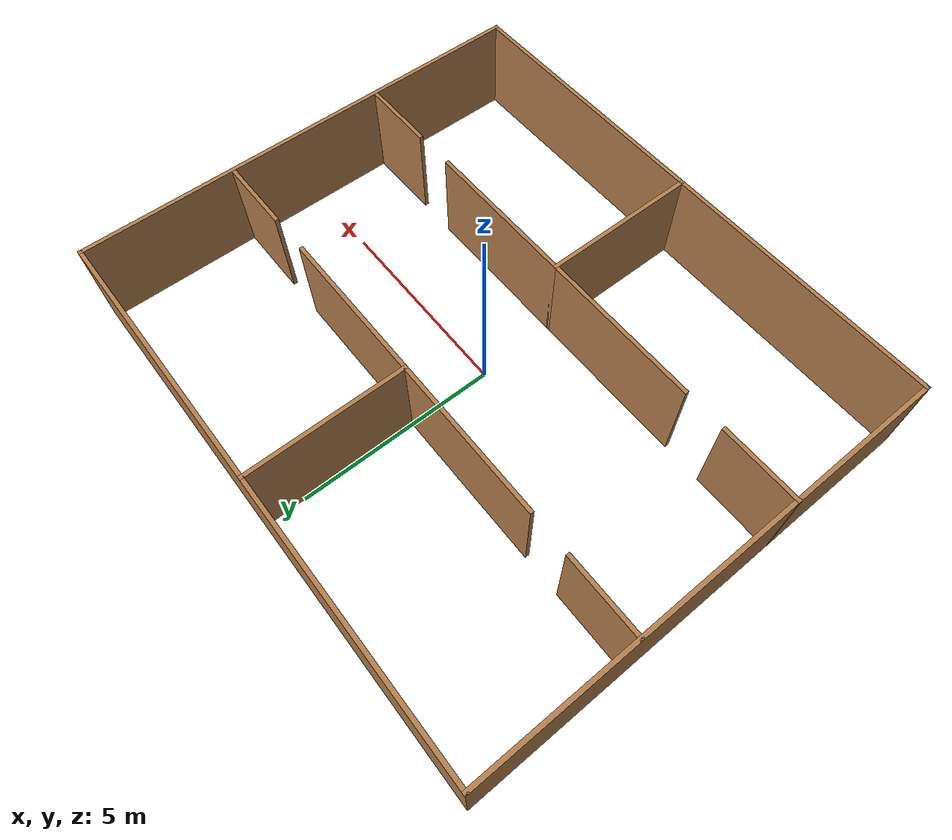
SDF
<?xml version='1.0'?>
<sdf version='1.7'>
  <model name='rooms_small'>
    <pose>0 0 0 0 -0 0</pose>
    <link name='Wall_0'>
      <collision name='Wall_0_Collision'>
        <geometry>
          <box>
            <size>14 0.1 2.5</size>
          </box>
        </geometry>
        <pose>0 0 1.25 0 -0 0</pose>
      </collision>
      <visual name='Wall_0_Visual'>
        <pose>0 0 1.25 0 -0 0</pose>
        <geometry>
          <box>
            <size>14 0.1 2.5</size>
          </box>
        </geometry>
        <material>
          <script>
            <uri>file://media/materials/scripts/gazebo.material</uri>
            <name>Gazebo/Wood</name>
          </script>
          <ambient>1 1 1 1</ambient>
        </material>
        <meta>
          <layer>0</layer>
        </meta>
      </visual>
      <pose>0 -5.95 0 0 -0 0</pose>
    </link>
    <link name='Wall_10'>
      <collision name='Wall_10_Collision'>
        <geometry>
          <box>
            <size>4.1 0.1 2.5</size>
          </box>
        </geometry>
        <pose>0 0 1.25 0 -0 0</pose>
      </collision>
      <visual name='Wall_10_Visual'>
        <pose>0 0 1.25 0 -0 0</pose>
        <geometry>
          <box>
            <size>4.1 0.1 2.5</size>
          </box>
        </geometry>
        <material>
          <script>
            <uri>file://media/materials/scripts/gazebo.material</uri>
            <name>Gazebo/Wood</name>
          </script>
          <ambient>1 1 1 1</ambient>
        </material>
        <meta>
          <layer>0</layer>
        </meta>
      </visual>
      <pose>-1.95 -2.05 0 0 -0 3.14159</pose>
    </link>
    <link name='Wall_12'>
      <collision name='Wall_12_Collision'>
        <geometry>
          <box>
            <size>4 0.1 2.5</size>
          </box>
        </geometry>
        <pose>0 0 1.25 0 -0 0</pose>
      </collision>
      <visual name='Wall_12_Visual'>
        <pose>0 0 1.25 0 -0 0</pose>
        <geometry>
          <box>
            <size>4 0.1 2.5</size>
          </box>
        </geometry>
        <material>
          <script>
            <uri>file://media/materials/scripts/gazebo.material</uri>
            <name>Gazebo/Wood</name>
          </script>
          <ambient>1 1 1 1</ambient>
        </material>
        <meta>
          <layer>0</layer>
        </meta>
      </visual>
      <pose>2 -2.05 0 0 -0 0</pose>
    </link>
    <link name='Wall_15'>
      <collision name='Wall_15_Collision'>
        <geometry>
          <box>
            <size>2 0.1 2.5</size>
          </box>
        </geometry>
        <pose>0 0 1.25 0 -0 0</pose>
      </collision>
      <visual name='Wall_15_Visual'>
        <pose>0 0 1.25 0 -0 0</pose>
        <geometry>
          <box>
            <size>2 0.1 2.5</size>
          </box>
        </geometry>
        <material>
          <script>
            <uri>file://media/materials/scripts/gazebo.material</uri>
            <name>Gazebo/Wood</name>
          </script>
          <ambient>1 1 1 1</ambient>
        </material>
        <meta>
          <layer>0</layer>
        </meta>
      </visual>
      <pose>-6 -2.05 0 0 -0 0</pose>
    </link>
    <link name='Wall_17'>
      <collision name='Wall_17_Collision'>
        <geometry>
          <box>
            <size>2 0.1 2.5</size>
          </box>
        </geometry>
        <pose>0 0 1.25 0 -0 0</pose>
      </collision>
      <visual name='Wall_17_Visual'>
        <pose>0 0 1.25 0 -0 0</pose>
        <geometry>
          <box>
            <size>2 0.1 2.5</size>
          </box>
        </geometry>
        <material>
          <script>
            <uri>file://media/materials/scripts/gazebo.material</uri>
            <name>Gazebo/Wood</name>
          </script>
          <ambient>1 1 1 1</ambient>
        </material>
        <meta>
          <layer>0</layer>
        </meta>
      </visual>
      <pose>6 -2.05 0 0 -0 3.14159</pose>
    </link>
    <link name='Wall_19'>
      <collision name='Wall_19_Collision'>
        <geometry>
          <box>
            <size>4 0.1 2.5</size>
          </box>
        </geometry>
        <pose>0 0 1.25 0 -0 0</pose>
      </collision>
      <visual name='Wall_19_Visual'>
        <pose>0 0 1.25 0 -0 0</pose>
        <geometry>
          <box>
            <size>4 0.1 2.5</size>
          </box>
        </geometry>
        <material>
          <script>
            <uri>file://media/materials/scripts/gazebo.material</uri>
            <name>Gazebo/Wood</name>
          </script>
          <ambient>1 1 1 1</ambient>
        </material>
        <meta>
          <layer>0</layer>
        </meta>
      </visual>
      <pose>0.05 4 0 0 -0 -1.5708</pose>
    </link>
    <link name='Wall_2'>
      <collision name='Wall_2_Collision'>
        <geometry>
          <box>
            <size>12 0.1 2.5</size>
          </box>
        </geometry>
        <pose>0 0 1.25 0 -0 0</pose>
      </collision>
      <visual name='Wall_2_Visual'>
        <pose>0 0 1.25 0 -0 0</pose>
        <geometry>
          <box>
            <size>12 0.1 2.5</size>
          </box>
        </geometry>
        <material>
          <script>
            <uri>file://media/materials/scripts/gazebo.material</uri>
            <name>Gazebo/Wood</name>
          </script>
          <ambient>1 1 1 1</ambient>
        </material>
        <meta>
          <layer>0</layer>
        </meta>
      </visual>
      <pose>-6.95 0 0 0 -0 1.5708</pose>
    </link>
    <link name='Wall_21'>
      <collision name='Wall_21_Collision'>
        <geometry>
          <box>
            <size>4 0.1 2.5</size>
          </box>
        </geometry>
        <pose>0 0 1.25 0 -0 0</pose>
      </collision>
      <visual name='Wall_21_Visual'>
        <pose>0 0 1.25 0 -0 0</pose>
        <geometry>
          <box>
            <size>4 0.1 2.5</size>
          </box>
        </geometry>
        <material>
          <script>
            <uri>file://media/materials/scripts/gazebo.material</uri>
            <name>Gazebo/Wood</name>
          </script>
          <ambient>1 1 1 1</ambient>
        </material>
        <meta>
          <layer>0</layer>
        </meta>
      </visual>
      <pose>2 2.05 0 0 -0 0</pose>
    </link>
    <link name='Wall_23'>
      <collision name='Wall_23_Collision'>
        <geometry>
          <box>
            <size>4.1 0.1 2.5</size>
          </box>
        </geometry>
        <pose>0 0 1.25 0 -0 0</pose>
      </collision>
      <visual name='Wall_23_Visual'>
        <pose>0 0 1.25 0 -0 0</pose>
        <geometry>
          <box>
            <size>4.1 0.1 2.5</size>
          </box>
        </geometry>
        <material>
          <script>
            <uri>file://media/materials/scripts/gazebo.material</uri>
            <name>Gazebo/Wood</name>
          </script>
          <ambient>1 1 1 1</ambient>
        </material>
        <meta>
          <layer>0</layer>
        </meta>
      </visual>
      <pose>-1.95 2.05 0 0 -0 3.14159</pose>
    </link>
    <link name='Wall_25'>
      <collision name='Wall_25_Collision'>
        <geometry>
          <box>
            <size>2 0.1 2.5</size>
          </box>
        </geometry>
        <pose>0 0 1.25 0 -0 0</pose>
      </collision>
      <visual name='Wall_25_Visual'>
        <pose>0 0 1.25 0 -0 0</pose>
        <geometry>
          <box>
            <size>2 0.1 2.5</size>
          </box>
        </geometry>
        <material>
          <script>
            <uri>file://media/materials/scripts/gazebo.material</uri>
            <name>Gazebo/Wood</name>
          </script>
          <ambient>1 1 1 1</ambient>
        </material>
        <meta>
          <layer>0</layer>
        </meta>
      </visual>
      <pose>-6 2.05 0 0 -0 0</pose>
    </link>
    <link name='Wall_27'>
      <collision name='Wall_27_Collision'>
        <geometry>
          <box>
            <size>1.999 0.1 2.5</size>
          </box>
        </geometry>
        <pose>0 0 1.25 0 -0 0</pose>
      </collision>
      <visual name='Wall_27_Visual'>
        <pose>0 0 1.25 0 -0 0</pose>
        <geometry>
          <box>
            <size>1.999 0.1 2.5</size>
          </box>
        </geometry>
        <material>
          <script>
            <uri>file://media/materials/scripts/gazebo.material</uri>
            <name>Gazebo/Wood</name>
          </script>
          <ambient>1 1 1 1</ambient>
        </material>
        <meta>
          <layer>0</layer>
        </meta>
      </visual>
      <pose>6 2.05 0 0 -0 3.14159</pose>
    </link>
    <link name='Wall_4'>
      <collision name='Wall_4_Collision'>
        <geometry>
          <box>
            <size>12 0.1 2.5</size>
          </box>
        </geometry>
        <pose>0 0 1.25 0 -0 0</pose>
      </collision>
      <visual name='Wall_4_Visual'>
        <pose>0 0 1.25 0 -0 0</pose>
        <geometry>
          <box>
            <size>12 0.1 2.5</size>
          </box>
        </geometry>
        <material>
          <script>
            <uri>file://media/materials/scripts/gazebo.material</uri>
            <name>Gazebo/Wood</name>
          </script>
          <ambient>1 1 1 1</ambient>
        </material>
        <meta>
          <layer>0</layer>
        </meta>
      </visual>
      <pose>6.95 0 0 0 -0 1.5708</pose>
    </link>
    <link name='Wall_6'>
      <collision name='Wall_6_Collision'>
        <geometry>
          <box>
            <size>14 0.1 2.5</size>
          </box>
        </geometry>
        <pose>0 0 1.25 0 -0 0</pose>
      </collision>
      <visual name='Wall_6_Visual'>
        <pose>0 0 1.25 0 -0 0</pose>
        <geometry>
          <box>
            <size>14 0.1 2.5</size>
          </box>
        </geometry>
        <material>
          <script>
            <uri>file://media/materials/scripts/gazebo.material</uri>
            <name>Gazebo/Wood</name>
          </script>
          <ambient>1 1 1 1</ambient>
        </material>
        <meta>
          <layer>0</layer>
        </meta>
      </visual>
      <pose>0 5.95 0 0 -0 0</pose>
    </link>
    <link name='Wall_8'>
      <collision name='Wall_8_Collision'>
        <geometry>
          <box>
            <size>4 0.1 2.5</size>
          </box>
        </geometry>
        <pose>0 0 1.25 0 -0 0</pose>
      </collision>
      <visual name='Wall_8_Visual'>
        <pose>0 0 1.25 0 -0 0</pose>
        <geometry>
          <box>
            <size>4 0.1 2.5</size>
          </box>
        </geometry>
        <material>
          <script>
            <uri>file://media/materials/scripts/gazebo.material</uri>
            <name>Gazebo/Wood</name>
          </script>
          <ambient>1 1 1 1</ambient>
        </material>
        <meta>
          <layer>0</layer>
        </meta>
      </visual>
      <pose>0.05 -4 0 0 -0 1.5708</pose>
    </link>
    <static>1</static>
  </model>
</sdf>
